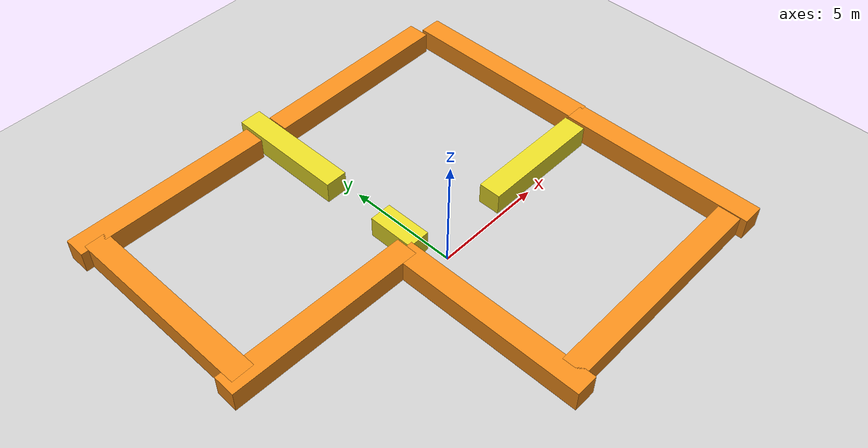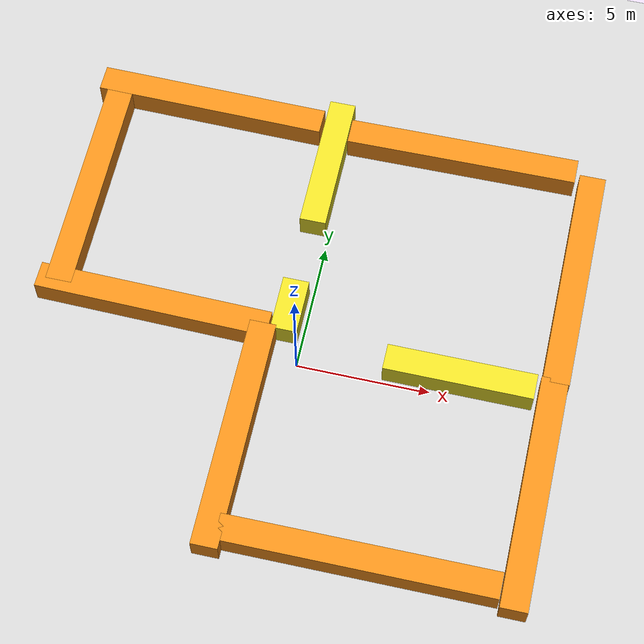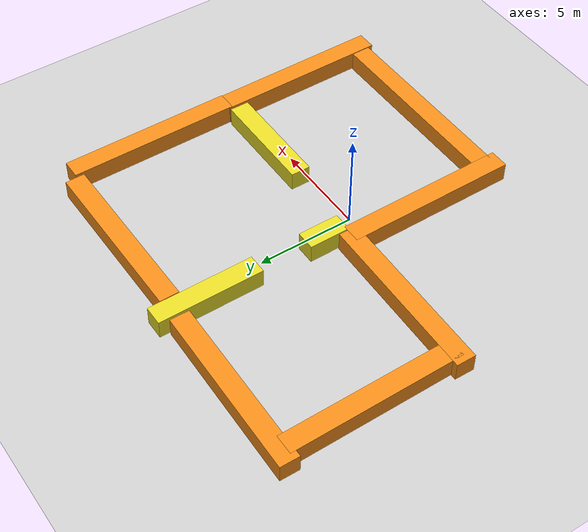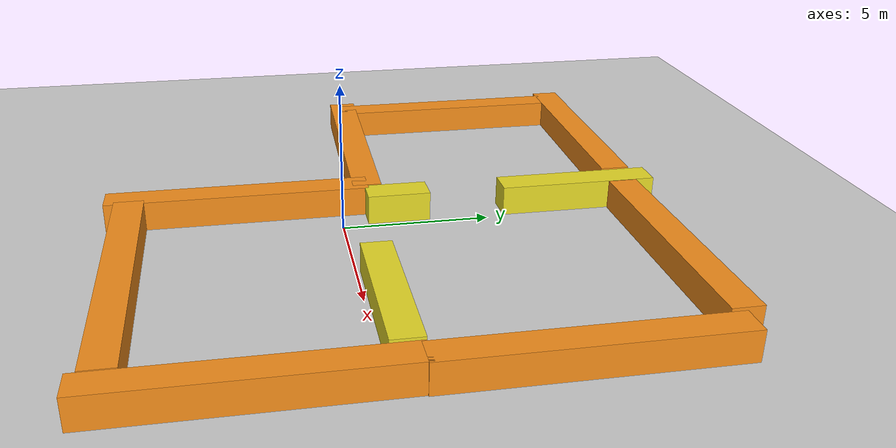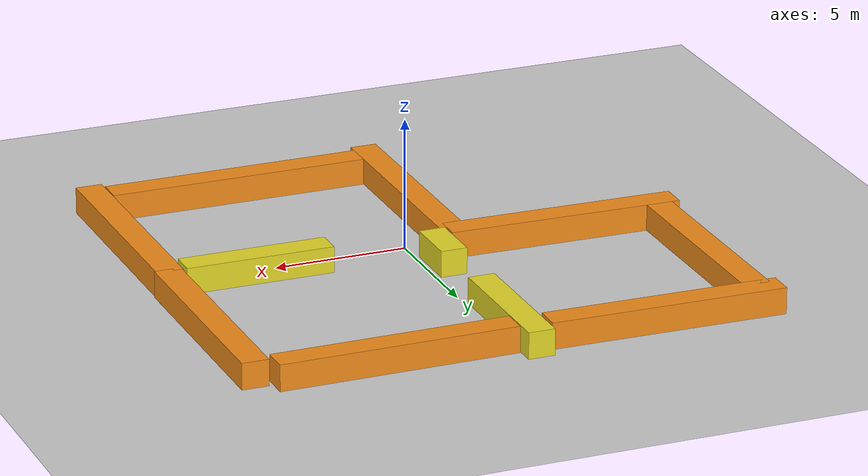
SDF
<sdf version="1.6">
 <world name="default">
  <light name="sun" type="directional">
   <pose>0 0 10 0 -0 0</pose>
   <diffuse>0.8 0.8 0.8 1</diffuse>
   <specular>0.2 0.2 0.2 1</specular>
   <attenuation>
    <range>1000</range>
    <constant>0.9</constant>
    <linear>0.01</linear>
    <quadratic>0.001</quadratic>
   </attenuation>
   <direction>-0.5 0.1 -0.9</direction>
  </light>
  <model name="ground_plane">
   <static>1</static>
   <link name="link">
    <collision name="collision">
     <geometry><plane><normal>0 0 1</normal><size>100 100</size></plane></geometry>
     <surface>
      <contact><collide_bitmask>65535</collide_bitmask></contact>
      <friction><ode><mu>100</mu><mu2>50</mu2></ode></friction>
     </surface>
    </collision>
    <visual name="visual">
     <cast_shadows>0</cast_shadows>
     <geometry><plane><normal>0 0 1</normal><size>100 100</size></plane></geometry>
    </visual>
   </link>
  </model>
  <gravity>0 0 -9.8</gravity>
  <magnetic_field>6e-06 2.3e-05 -4.2e-05</magnetic_field>
  <atmosphere type="adiabatic"/>
  <physics name="default_physics" default="0" type="ode">
   <max_step_size>0.001</max_step_size>
   <real_time_factor>1</real_time_factor>
   <real_time_update_rate>1000</real_time_update_rate>
  </physics>
  <scene><ambient>0.4 0.4 0.4 1</ambient><background>0.7 0.7 0.7 1</background><shadows>1</shadows></scene>
  <audio><device>default</device></audio>
  <spherical_coordinates>
   <surface_model>EARTH_WGS84</surface_model>
   <latitude_deg>0</latitude_deg>
   <longitude_deg>0</longitude_deg>
   <elevation>0</elevation>
   <heading_deg>0</heading_deg>
  </spherical_coordinates>
  <model name="floor_1">
   <link name="link_0">
    <inertial>
     <mass>20.91</mass>
     <inertia><ixx>140.075</ixx><ixy>0</ixy><ixz>0</ixz><iyy>3.485</iyy><iyz>0</iyz><izz>140.075</izz></inertia>
    </inertial>
    <pose>-10.2146 2.88863 0 0 -0 0</pose>
    <visual name="visual">
     <geometry><box><size>1 8.90998 1</size></box></geometry>
     <material>
      <lighting>1</lighting>
      <script><uri>file://media/materials/scripts/gazebo.material</uri><name>Gazebo/Orange</name></script>
      <shader type="vertex"><normal_map>__default__</normal_map></shader>
      <ambient>0.3 0.3 0.3 1</ambient>
      <diffuse>0.7 0.7 0.7 1</diffuse>
      <specular>0.01 0.01 0.01 1</specular>
      <emissive>0 0 0 1</emissive>
     </material>
    </visual>
    <collision name="collision">
     <geometry><box><size>1 8.90998 1</size></box></geometry>
     <surface>
      <friction>
       <ode><mu>1</mu><mu2>1</mu2><fdir1>0 0 0</fdir1><slip1>0</slip1><slip2>0</slip2></ode>
       <torsional>
        <coefficient>1</coefficient>
        <patch_radius>0</patch_radius>
        <surface_radius>0</surface_radius>
        <use_patch_radius>1</use_patch_radius>
        <ode><slip>0</slip></ode>
       </torsional>
      </friction>
      <bounce><restitution_coefficient>0</restitution_coefficient><threshold>1e+06</threshold></bounce>
      <contact>
       <collide_without_contact>0</collide_without_contact>
       <collide_without_contact_bitmask>1</collide_without_contact_bitmask>
       <collide_bitmask>1</collide_bitmask>
       <ode>
        <soft_cfm>0</soft_cfm>
        <soft_erp>0.2</soft_erp>
        <kp>1e+13</kp>
        <kd>1</kd>
        <max_vel>0.01</max_vel>
        <min_depth>0</min_depth>
       </ode>
       <bullet>
        <split_impulse>1</split_impulse>
        <split_impulse_penetration_threshold>-0.01</split_impulse_penetration_threshold>
        <soft_cfm>0</soft_cfm>
        <soft_erp>0.2</soft_erp>
        <kp>1e+13</kp>
        <kd>1</kd>
       </bullet>
      </contact>
     </surface>
    </collision>
   </link>
   <link name="link_0_clone">
    <inertial>
     <mass>20.91</mass>
     <inertia><ixx>140.075</ixx><ixy>0</ixy><ixz>0</ixz><iyy>3.485</iyy><iyz>0</iyz><izz>140.075</izz></inertia>
    </inertial>
    <pose>-2.33424 -6.08626 0 0 -0 0</pose>
    <visual name="visual">
     <geometry><box><size>1 8.90998 1</size></box></geometry>
     <material>
      <lighting>1</lighting>
      <script><uri>file://media/materials/scripts/gazebo.material</uri><name>Gazebo/Orange</name></script>
      <shader type="vertex"><normal_map>__default__</normal_map></shader>
      <ambient>1 0.509 0.047 1</ambient>
      <diffuse>1 0.509 0.047 1</diffuse>
      <specular>0.5 0.5 0.5 1</specular>
      <emissive>0 0 0 1</emissive>
     </material>
    </visual>
    <collision name="collision">
     <geometry><box><size>1 8.90998 1</size></box></geometry>
     <surface>
      <friction>
       <ode><mu>1</mu><mu2>1</mu2><fdir1>0 0 0</fdir1><slip1>0</slip1><slip2>0</slip2></ode>
       <torsional>
        <coefficient>1</coefficient>
        <patch_radius>0</patch_radius>
        <surface_radius>0</surface_radius>
        <use_patch_radius>1</use_patch_radius>
        <ode><slip>0</slip></ode>
       </torsional>
      </friction>
      <bounce><restitution_coefficient>0</restitution_coefficient><threshold>1e+06</threshold></bounce>
      <contact>
       <collide_without_contact>0</collide_without_contact>
       <collide_without_contact_bitmask>1</collide_without_contact_bitmask>
       <collide_bitmask>1</collide_bitmask>
       <ode>
        <soft_cfm>0</soft_cfm>
        <soft_erp>0.2</soft_erp>
        <kp>1e+13</kp>
        <kd>1</kd>
        <max_vel>0.01</max_vel>
        <min_depth>0</min_depth>
       </ode>
       <bullet>
        <split_impulse>1</split_impulse>
        <split_impulse_penetration_threshold>-0.01</split_impulse_penetration_threshold>
        <soft_cfm>0</soft_cfm>
        <soft_erp>0.2</soft_erp>
        <kp>1e+13</kp>
        <kd>1</kd>
       </bullet>
      </contact>
     </surface>
    </collision>
   </link>
   <link name="link_0_clone_0">
    <inertial>
     <mass>20.91</mass>
     <inertia><ixx>140.075</ixx><ixy>0</ixy><ixz>0</ixz><iyy>3.485</iyy><iyz>0</iyz><izz>140.075</izz></inertia>
    </inertial>
    <pose>8.59662 2.73423 0 0 -0 0</pose>
    <visual name="visual">
     <geometry><box><size>1 8.90998 1</size></box></geometry>
     <material>
      <lighting>1</lighting>
      <script><uri>file://media/materials/scripts/gazebo.material</uri><name>Gazebo/Orange</name></script>
      <shader type="vertex"><normal_map>__default__</normal_map></shader>
      <ambient>1 0.509 0.047 1</ambient>
      <diffuse>1 0.509 0.047 1</diffuse>
      <specular>0.5 0.5 0.5 1</specular>
      <emissive>0 0 0 1</emissive>
     </material>
    </visual>
    <collision name="collision">
     <geometry><box><size>1 8.90998 1</size></box></geometry>
     <surface>
      <friction>
       <ode><mu>1</mu><mu2>1</mu2><fdir1>0 0 0</fdir1><slip1>0</slip1><slip2>0</slip2></ode>
       <torsional>
        <coefficient>1</coefficient>
        <patch_radius>0</patch_radius>
        <surface_radius>0</surface_radius>
        <use_patch_radius>1</use_patch_radius>
        <ode><slip>0</slip></ode>
       </torsional>
      </friction>
      <bounce><restitution_coefficient>0</restitution_coefficient><threshold>1e+06</threshold></bounce>
      <contact>
       <collide_without_contact>0</collide_without_contact>
       <collide_without_contact_bitmask>1</collide_without_contact_bitmask>
       <collide_bitmask>1</collide_bitmask>
       <ode>
        <soft_cfm>0</soft_cfm>
        <soft_erp>0.2</soft_erp>
        <kp>1e+13</kp>
        <kd>1</kd>
        <max_vel>0.01</max_vel>
        <min_depth>0</min_depth>
       </ode>
       <bullet>
        <split_impulse>1</split_impulse>
        <split_impulse_penetration_threshold>-0.01</split_impulse_penetration_threshold>
        <soft_cfm>0</soft_cfm>
        <soft_erp>0.2</soft_erp>
        <kp>1e+13</kp>
        <kd>1</kd>
       </bullet>
      </contact>
     </surface>
    </collision>
   </link>
   <link name="link_0_clone_1">
    <inertial>
     <mass>12.7906</mass>
     <inertia><ixx>32.7275</ixx><ixy>0</ixy><ixz>0</ixz><iyy>2.13176</iyy><iyz>0</iyz><izz>32.7275</izz></inertia>
    </inertial>
    <pose>-1.50437 5.68915 0 0 -0 0</pose>
    <visual name="visual">
     <geometry><box><size>1 5.4502 1</size></box></geometry>
     <material>
      <lighting>1</lighting>
      <script><uri>file://media/materials/scripts/gazebo.material</uri><name>Gazebo/Yellow</name></script>
      <shader type="vertex"><normal_map>__default__</normal_map></shader>
      <ambient>1 1 0 1</ambient>
      <diffuse>1 1 0 1</diffuse>
      <emissive>0 0 0 1</emissive>
     </material>
    </visual>
    <collision name="collision">
     <geometry><box><size>1 5.4502 1</size></box></geometry>
     <surface>
      <friction>
       <ode><mu>1</mu><mu2>1</mu2><fdir1>0 0 0</fdir1><slip1>0</slip1><slip2>0</slip2></ode>
       <torsional>
        <coefficient>1</coefficient>
        <patch_radius>0</patch_radius>
        <surface_radius>0</surface_radius>
        <use_patch_radius>1</use_patch_radius>
        <ode><slip>0</slip></ode>
       </torsional>
      </friction>
      <bounce><restitution_coefficient>0</restitution_coefficient><threshold>1e+06</threshold></bounce>
      <contact>
       <collide_without_contact>0</collide_without_contact>
       <collide_without_contact_bitmask>1</collide_without_contact_bitmask>
       <collide_bitmask>1</collide_bitmask>
       <ode>
        <soft_cfm>0</soft_cfm>
        <soft_erp>0.2</soft_erp>
        <kp>1e+13</kp>
        <kd>1</kd>
        <max_vel>0.01</max_vel>
        <min_depth>0</min_depth>
       </ode>
       <bullet>
        <split_impulse>1</split_impulse>
        <split_impulse_penetration_threshold>-0.01</split_impulse_penetration_threshold>
        <soft_cfm>0</soft_cfm>
        <soft_erp>0.2</soft_erp>
        <kp>1e+13</kp>
        <kd>1</kd>
       </bullet>
      </contact>
     </surface>
    </collision>
   </link>
   <link name="link_0_clone_2">
    <inertial>
     <mass>20.91</mass>
     <inertia><ixx>140.075</ixx><ixy>0</ixy><ixz>0</ixz><iyy>3.485</iyy><iyz>0</iyz><izz>140.075</izz></inertia>
    </inertial>
    <pose>8.55596 -6.01999 0 0 -0 0</pose>
    <visual name="visual">
     <geometry><box><size>1 8.90998 1</size></box></geometry>
     <material>
      <lighting>1</lighting>
      <script><uri>file://media/materials/scripts/gazebo.material</uri><name>Gazebo/Orange</name></script>
      <shader type="vertex"><normal_map>__default__</normal_map></shader>
      <ambient>0.3 0.3 0.3 1</ambient>
      <diffuse>0.7 0.7 0.7 1</diffuse>
      <specular>0.01 0.01 0.01 1</specular>
      <emissive>0 0 0 1</emissive>
     </material>
    </visual>
    <collision name="collision">
     <geometry><box><size>1 8.90998 1</size></box></geometry>
     <surface>
      <friction>
       <ode><mu>1</mu><mu2>1</mu2><fdir1>0 0 0</fdir1><slip1>0</slip1><slip2>0</slip2></ode>
       <torsional>
        <coefficient>1</coefficient>
        <patch_radius>0</patch_radius>
        <surface_radius>0</surface_radius>
        <use_patch_radius>1</use_patch_radius>
        <ode><slip>0</slip></ode>
       </torsional>
      </friction>
      <bounce><restitution_coefficient>0</restitution_coefficient><threshold>1e+06</threshold></bounce>
      <contact>
       <collide_without_contact>0</collide_without_contact>
       <collide_without_contact_bitmask>1</collide_without_contact_bitmask>
       <collide_bitmask>1</collide_bitmask>
       <ode>
        <soft_cfm>0</soft_cfm>
        <soft_erp>0.2</soft_erp>
        <kp>1e+13</kp>
        <kd>1</kd>
        <max_vel>0.01</max_vel>
        <min_depth>0</min_depth>
       </ode>
       <bullet>
        <split_impulse>1</split_impulse>
        <split_impulse_penetration_threshold>-0.01</split_impulse_penetration_threshold>
        <soft_cfm>0</soft_cfm>
        <soft_erp>0.2</soft_erp>
        <kp>1e+13</kp>
        <kd>1</kd>
       </bullet>
      </contact>
     </surface>
    </collision>
   </link>
   <link name="link_0_clone_3">
    <inertial>
     <mass>20.91</mass>
     <inertia><ixx>140.075</ixx><ixy>0</ixy><ixz>0</ixz><iyy>3.485</iyy><iyz>0</iyz><izz>140.075</izz></inertia>
    </inertial>
    <pose>-6.56558 -1.56304 0 0 0 -1.59103</pose>
    <visual name="visual">
     <geometry><box><size>1 8.90998 1</size></box></geometry>
     <material>
      <lighting>1</lighting>
      <script><uri>file://media/materials/scripts/gazebo.material</uri><name>Gazebo/Orange</name></script>
      <shader type="vertex"><normal_map>__default__</normal_map></shader>
      <ambient>1 0.509 0.047 1</ambient>
      <diffuse>1 0.509 0.047 1</diffuse>
      <specular>0.5 0.5 0.5 1</specular>
      <emissive>0 0 0 1</emissive>
     </material>
    </visual>
    <collision name="collision">
     <geometry><box><size>1 8.90998 1</size></box></geometry>
     <surface>
      <friction>
       <ode><mu>1</mu><mu2>1</mu2><fdir1>0 0 0</fdir1><slip1>0</slip1><slip2>0</slip2></ode>
       <torsional>
        <coefficient>1</coefficient>
        <patch_radius>0</patch_radius>
        <surface_radius>0</surface_radius>
        <use_patch_radius>1</use_patch_radius>
        <ode><slip>0</slip></ode>
       </torsional>
      </friction>
      <bounce><restitution_coefficient>0</restitution_coefficient><threshold>1e+06</threshold></bounce>
      <contact>
       <collide_without_contact>0</collide_without_contact>
       <collide_without_contact_bitmask>1</collide_without_contact_bitmask>
       <collide_bitmask>1</collide_bitmask>
       <ode>
        <soft_cfm>0</soft_cfm>
        <soft_erp>0.2</soft_erp>
        <kp>1e+13</kp>
        <kd>1</kd>
        <max_vel>0.01</max_vel>
        <min_depth>0</min_depth>
       </ode>
       <bullet>
        <split_impulse>1</split_impulse>
        <split_impulse_penetration_threshold>-0.01</split_impulse_penetration_threshold>
        <soft_cfm>0</soft_cfm>
        <soft_erp>0.2</soft_erp>
        <kp>1e+13</kp>
        <kd>1</kd>
       </bullet>
      </contact>
     </surface>
    </collision>
   </link>
   <link name="link_0_clone_4">
    <inertial>
     <mass>20.91</mass>
     <inertia><ixx>140.075</ixx><ixy>0</ixy><ixz>0</ixz><iyy>3.485</iyy><iyz>0</iyz><izz>140.075</izz></inertia>
    </inertial>
    <pose>-6.58004 7.49872 0 0 0 -1.58718</pose>
    <visual name="visual">
     <geometry><box><size>1 8.90998 1</size></box></geometry>
     <material>
      <lighting>1</lighting>
      <script><uri>file://media/materials/scripts/gazebo.material</uri><name>Gazebo/Orange</name></script>
      <shader type="vertex"><normal_map>__default__</normal_map></shader>
      <ambient>1 0.509 0.047 1</ambient>
      <diffuse>1 0.509 0.047 1</diffuse>
      <specular>0.5 0.5 0.5 1</specular>
      <emissive>0 0 0 1</emissive>
     </material>
    </visual>
    <collision name="collision">
     <geometry><box><size>1 8.90998 1</size></box></geometry>
     <surface>
      <friction>
       <ode><mu>1</mu><mu2>1</mu2><fdir1>0 0 0</fdir1><slip1>0</slip1><slip2>0</slip2></ode>
       <torsional>
        <coefficient>1</coefficient>
        <patch_radius>0</patch_radius>
        <surface_radius>0</surface_radius>
        <use_patch_radius>1</use_patch_radius>
        <ode><slip>0</slip></ode>
       </torsional>
      </friction>
      <bounce><restitution_coefficient>0</restitution_coefficient><threshold>1e+06</threshold></bounce>
      <contact>
       <collide_without_contact>0</collide_without_contact>
       <collide_without_contact_bitmask>1</collide_without_contact_bitmask>
       <collide_bitmask>1</collide_bitmask>
       <ode>
        <soft_cfm>0</soft_cfm>
        <soft_erp>0.2</soft_erp>
        <kp>1e+13</kp>
        <kd>1</kd>
        <max_vel>0.01</max_vel>
        <min_depth>0</min_depth>
       </ode>
       <bullet>
        <split_impulse>1</split_impulse>
        <split_impulse_penetration_threshold>-0.01</split_impulse_penetration_threshold>
        <soft_cfm>0</soft_cfm>
        <soft_erp>0.2</soft_erp>
        <kp>1e+13</kp>
        <kd>1</kd>
       </bullet>
      </contact>
     </surface>
    </collision>
   </link>
   <link name="link_0_clone_5">
    <inertial>
     <mass>20.91</mass>
     <inertia><ixx>140.075</ixx><ixy>0</ixy><ixz>0</ixz><iyy>3.485</iyy><iyz>0</iyz><izz>140.075</izz></inertia>
    </inertial>
    <pose>3.48363 7.28138 0 0 0 -1.56489</pose>
    <visual name="visual">
     <geometry><box><size>1 8.90998 1</size></box></geometry>
     <material>
      <lighting>1</lighting>
      <script><uri>file://media/materials/scripts/gazebo.material</uri><name>Gazebo/Orange</name></script>
      <shader type="vertex"><normal_map>__default__</normal_map></shader>
      <ambient>1 0.509 0.047 1</ambient>
      <diffuse>1 0.509 0.047 1</diffuse>
      <specular>0.5 0.5 0.5 1</specular>
      <emissive>0 0 0 1</emissive>
     </material>
    </visual>
    <collision name="collision">
     <geometry><box><size>1 8.90998 1</size></box></geometry>
     <surface>
      <friction>
       <ode><mu>1</mu><mu2>1</mu2><fdir1>0 0 0</fdir1><slip1>0</slip1><slip2>0</slip2></ode>
       <torsional>
        <coefficient>1</coefficient>
        <patch_radius>0</patch_radius>
        <surface_radius>0</surface_radius>
        <use_patch_radius>1</use_patch_radius>
        <ode><slip>0</slip></ode>
       </torsional>
      </friction>
      <bounce><restitution_coefficient>0</restitution_coefficient><threshold>1e+06</threshold></bounce>
      <contact>
       <collide_without_contact>0</collide_without_contact>
       <collide_without_contact_bitmask>1</collide_without_contact_bitmask>
       <collide_bitmask>1</collide_bitmask>
       <ode>
        <soft_cfm>0</soft_cfm>
        <soft_erp>0.2</soft_erp>
        <kp>1e+13</kp>
        <kd>1</kd>
        <max_vel>0.01</max_vel>
        <min_depth>0</min_depth>
       </ode>
       <bullet>
        <split_impulse>1</split_impulse>
        <split_impulse_penetration_threshold>-0.01</split_impulse_penetration_threshold>
        <soft_cfm>0</soft_cfm>
        <soft_erp>0.2</soft_erp>
        <kp>1e+13</kp>
        <kd>1</kd>
       </bullet>
      </contact>
     </surface>
    </collision>
   </link>
   <link name="link_0_clone_6">
    <inertial>
     <mass>13.1074</mass>
     <inertia><ixx>35.1652</ixx><ixy>0</ixy><ixz>0</ixz><iyy>2.18456</iyy><iyz>0</iyz><izz>35.1652</izz></inertia>
    </inertial>
    <pose>5.12338 -2.02148 0 0 -0 1.56672</pose>
    <visual name="visual">
     <geometry><box><size>1 5.58519 1</size></box></geometry>
     <material>
      <lighting>1</lighting>
      <script><uri>file://media/materials/scripts/gazebo.material</uri><name>Gazebo/Yellow</name></script>
      <shader type="vertex"><normal_map>__default__</normal_map></shader>
      <ambient>1 1 0 1</ambient>
      <diffuse>1 1 0 1</diffuse>
      <emissive>0 0 0 1</emissive>
     </material>
    </visual>
    <collision name="collision">
     <geometry><box><size>1 5.58519 1</size></box></geometry>
     <surface>
      <friction>
       <ode><mu>1</mu><mu2>1</mu2><fdir1>0 0 0</fdir1><slip1>0</slip1><slip2>0</slip2></ode>
       <torsional>
        <coefficient>1</coefficient>
        <patch_radius>0</patch_radius>
        <surface_radius>0</surface_radius>
        <use_patch_radius>1</use_patch_radius>
        <ode><slip>0</slip></ode>
       </torsional>
      </friction>
      <bounce><restitution_coefficient>0</restitution_coefficient><threshold>1e+06</threshold></bounce>
      <contact>
       <collide_without_contact>0</collide_without_contact>
       <collide_without_contact_bitmask>1</collide_without_contact_bitmask>
       <collide_bitmask>1</collide_bitmask>
       <ode>
        <soft_cfm>0</soft_cfm>
        <soft_erp>0.2</soft_erp>
        <kp>1e+13</kp>
        <kd>1</kd>
        <max_vel>0.01</max_vel>
        <min_depth>0</min_depth>
       </ode>
       <bullet>
        <split_impulse>1</split_impulse>
        <split_impulse_penetration_threshold>-0.01</split_impulse_penetration_threshold>
        <soft_cfm>0</soft_cfm>
        <soft_erp>0.2</soft_erp>
        <kp>1e+13</kp>
        <kd>1</kd>
       </bullet>
      </contact>
     </surface>
    </collision>
   </link>
   <link name="link_0_clone_7">
    <inertial>
     <mass>23.6137</mass>
     <inertia><ixx>201.2</ixx><ixy>0</ixy><ixz>0</ixz><iyy>3.93562</iyy><iyz>0</iyz><izz>201.2</izz></inertia>
    </inertial>
    <pose>2.97996 -9.70812 0 0 0 -1.56982</pose>
    <visual name="visual">
     <geometry><box><size>1 10.0621 1</size></box></geometry>
     <material>
      <lighting>1</lighting>
      <script><uri>file://media/materials/scripts/gazebo.material</uri><name>Gazebo/Orange</name></script>
      <shader type="vertex"><normal_map>__default__</normal_map></shader>
      <ambient>1 0.509 0.047 1</ambient>
      <diffuse>1 0.509 0.047 1</diffuse>
      <specular>0.5 0.5 0.5 1</specular>
      <emissive>0 0 0 1</emissive>
     </material>
    </visual>
    <collision name="collision">
     <geometry><box><size>1 10.0621 1</size></box></geometry>
     <surface>
      <friction>
       <ode><mu>1</mu><mu2>1</mu2><fdir1>0 0 0</fdir1><slip1>0</slip1><slip2>0</slip2></ode>
       <torsional>
        <coefficient>1</coefficient>
        <patch_radius>0</patch_radius>
        <surface_radius>0</surface_radius>
        <use_patch_radius>1</use_patch_radius>
        <ode><slip>0</slip></ode>
       </torsional>
      </friction>
      <bounce><restitution_coefficient>0</restitution_coefficient><threshold>1e+06</threshold></bounce>
      <contact>
       <collide_without_contact>0</collide_without_contact>
       <collide_without_contact_bitmask>1</collide_without_contact_bitmask>
       <collide_bitmask>1</collide_bitmask>
       <ode>
        <soft_cfm>0</soft_cfm>
        <soft_erp>0.2</soft_erp>
        <kp>1e+13</kp>
        <kd>1</kd>
        <max_vel>0.01</max_vel>
        <min_depth>0</min_depth>
       </ode>
       <bullet>
        <split_impulse>1</split_impulse>
        <split_impulse_penetration_threshold>-0.01</split_impulse_penetration_threshold>
        <soft_cfm>0</soft_cfm>
        <soft_erp>0.2</soft_erp>
        <kp>1e+13</kp>
        <kd>1</kd>
       </bullet>
      </contact>
     </surface>
    </collision>
   </link>
   <link name="link_0_clone_8">
    <inertial>
     <mass>5.00174</mass>
     <inertia><ixx>2.31017</ixx><ixy>0</ixy><ixz>0</ixz><iyy>0.833624</iyy><iyz>0</iyz><izz>2.31017</izz></inertia>
    </inertial>
    <pose>-1.54068 -0.693256 0 0 -0 0</pose>
    <visual name="visual">
     <geometry><box><size>1 2.13131 1</size></box></geometry>
     <material>
      <lighting>1</lighting>
      <script><uri>file://media/materials/scripts/gazebo.material</uri><name>Gazebo/Yellow</name></script>
      <shader type="vertex"><normal_map>__default__</normal_map></shader>
      <ambient>1 1 0 1</ambient>
      <diffuse>1 1 0 1</diffuse>
      <emissive>0 0 0 1</emissive>
     </material>
    </visual>
    <collision name="collision">
     <geometry><box><size>1 2.13131 1</size></box></geometry>
     <surface>
      <friction>
       <ode><mu>1</mu><mu2>1</mu2><fdir1>0 0 0</fdir1><slip1>0</slip1><slip2>0</slip2></ode>
       <torsional>
        <coefficient>1</coefficient>
        <patch_radius>0</patch_radius>
        <surface_radius>0</surface_radius>
        <use_patch_radius>1</use_patch_radius>
        <ode><slip>0</slip></ode>
       </torsional>
      </friction>
      <bounce><restitution_coefficient>0</restitution_coefficient><threshold>1e+06</threshold></bounce>
      <contact>
       <collide_without_contact>0</collide_without_contact>
       <collide_without_contact_bitmask>1</collide_without_contact_bitmask>
       <collide_bitmask>1</collide_bitmask>
       <ode>
        <soft_cfm>0</soft_cfm>
        <soft_erp>0.2</soft_erp>
        <kp>1e+13</kp>
        <kd>1</kd>
        <max_vel>0.01</max_vel>
        <min_depth>0</min_depth>
       </ode>
       <bullet>
        <split_impulse>1</split_impulse>
        <split_impulse_penetration_threshold>-0.01</split_impulse_penetration_threshold>
        <soft_cfm>0</soft_cfm>
        <soft_erp>0.2</soft_erp>
        <kp>1e+13</kp>
        <kd>1</kd>
       </bullet>
      </contact>
     </surface>
    </collision>
   </link>
   <static>1</static>
   <pose>0.855423 2.65128 0.5 0 -0 0</pose>
  </model>
 </world>
</sdf>
